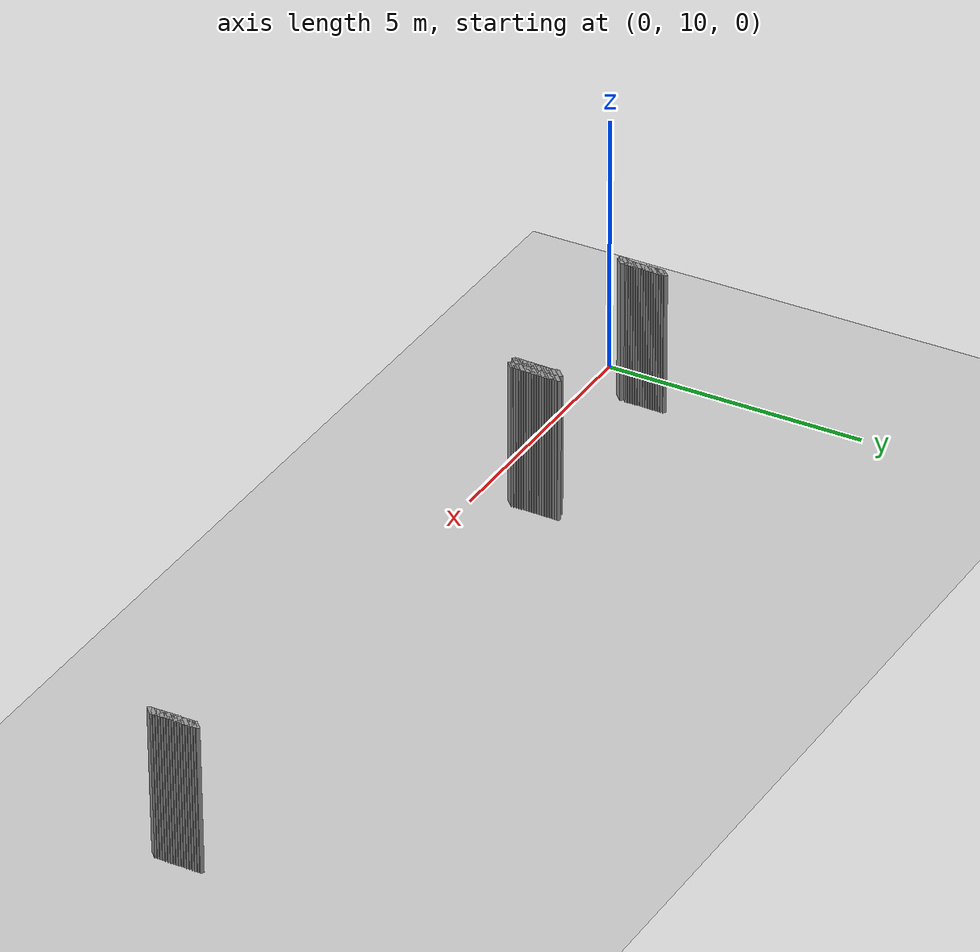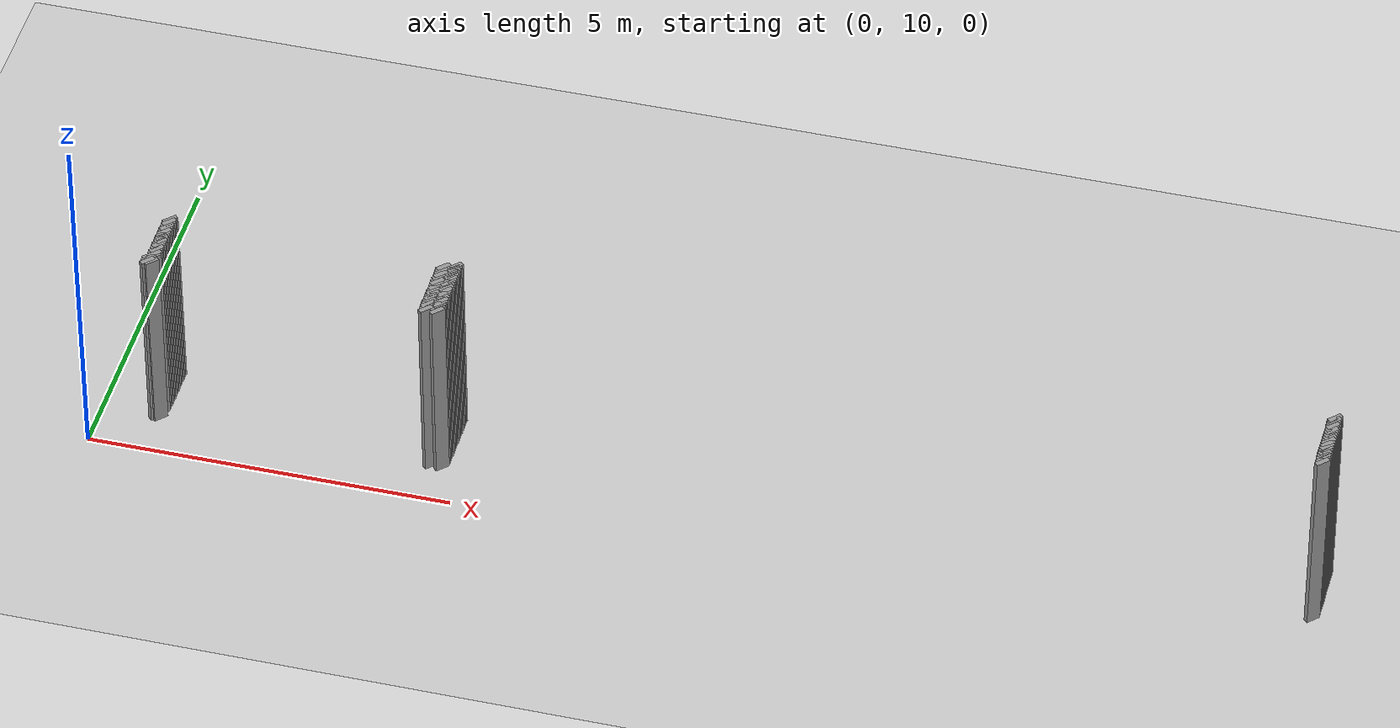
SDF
<sdf version="1.5">
 <world name="default">
  <include><uri>model://ground_plane</uri></include>
  <include><uri>model://sun</uri></include>
  <model name="grey_wall_1404">
   <static>1</static>
   <link name="link">
    <pose>4.7 11.55  1.4 0 0 -0.7853981633974483</pose>
    <collision name="collision">
     <geometry><box><size>0.07071067811865576 .2  2.8</size></box></geometry>
    </collision>
    <visual name="visual">
     <cast_shadows>0</cast_shadows>
     <geometry><box><size>0.07071067811865576 .2  2.8</size></box></geometry>
     <material>
      <script>
       <uri>model://grey_wall/materials/scripts</uri>
       <uri>model://grey_wall/materials/textures</uri>
       <name>vrc/grey_wall</name>
      </script>
     </material>
    </visual>
   </link>
  </model>
  <model name="grey_wall_1405">
   <static>1</static>
   <link name="link">
    <pose>16.45 11.55  1.4 0 0 -0.7853981633974838</pose>
    <collision name="collision">
     <geometry><box><size>0.07071067811865325 .2  2.8</size></box></geometry>
    </collision>
    <visual name="visual">
     <cast_shadows>0</cast_shadows>
     <geometry><box><size>0.07071067811865325 .2  2.8</size></box></geometry>
     <material>
      <script>
       <uri>model://grey_wall/materials/scripts</uri>
       <uri>model://grey_wall/materials/textures</uri>
       <name>vrc/grey_wall</name>
      </script>
     </material>
    </visual>
   </link>
  </model>
  <model name="grey_wall_1406">
   <static>1</static>
   <link name="link">
    <pose>0.8 11.5  1.4 0 0 -0.7853981633974549</pose>
    <collision name="collision">
     <geometry><box><size>0.07071067811865529 .2  2.8</size></box></geometry>
    </collision>
    <visual name="visual">
     <cast_shadows>0</cast_shadows>
     <geometry><box><size>0.07071067811865529 .2  2.8</size></box></geometry>
     <material>
      <script>
       <uri>model://grey_wall/materials/scripts</uri>
       <uri>model://grey_wall/materials/textures</uri>
       <name>vrc/grey_wall</name>
      </script>
     </material>
    </visual>
   </link>
  </model>
  <model name="grey_wall_1407">
   <static>1</static>
   <link name="link">
    <pose>4.55 11.5  1.4 0 0 -0.7853981633974483</pose>
    <collision name="collision">
     <geometry><box><size>0.07071067811865576 .2  2.8</size></box></geometry>
    </collision>
    <visual name="visual">
     <cast_shadows>0</cast_shadows>
     <geometry><box><size>0.07071067811865576 .2  2.8</size></box></geometry>
     <material>
      <script>
       <uri>model://grey_wall/materials/scripts</uri>
       <uri>model://grey_wall/materials/textures</uri>
       <name>vrc/grey_wall</name>
      </script>
     </material>
    </visual>
   </link>
  </model>
  <model name="grey_wall_1408">
   <static>1</static>
   <link name="link">
    <pose>4.7 11.5  1.4 0 0 -0.7853981633974483</pose>
    <collision name="collision">
     <geometry><box><size>0.07071067811865576 .2  2.8</size></box></geometry>
    </collision>
    <visual name="visual">
     <cast_shadows>0</cast_shadows>
     <geometry><box><size>0.07071067811865576 .2  2.8</size></box></geometry>
     <material>
      <script>
       <uri>model://grey_wall/materials/scripts</uri>
       <uri>model://grey_wall/materials/textures</uri>
       <name>vrc/grey_wall</name>
      </script>
     </material>
    </visual>
   </link>
  </model>
  <model name="grey_wall_1409">
   <static>1</static>
   <link name="link">
    <pose>16.45 11.5  1.4 0 0 -0.7853981633974838</pose>
    <collision name="collision">
     <geometry><box><size>0.07071067811865325 .2  2.8</size></box></geometry>
    </collision>
    <visual name="visual">
     <cast_shadows>0</cast_shadows>
     <geometry><box><size>0.07071067811865325 .2  2.8</size></box></geometry>
     <material>
      <script>
       <uri>model://grey_wall/materials/scripts</uri>
       <uri>model://grey_wall/materials/textures</uri>
       <name>vrc/grey_wall</name>
      </script>
     </material>
    </visual>
   </link>
  </model>
  <model name="grey_wall_1410">
   <static>1</static>
   <link name="link">
    <pose>0.8 11.450000000000001  1.4 0 0 -0.7853981633974549</pose>
    <collision name="collision">
     <geometry><box><size>0.07071067811865529 .2  2.8</size></box></geometry>
    </collision>
    <visual name="visual">
     <cast_shadows>0</cast_shadows>
     <geometry><box><size>0.07071067811865529 .2  2.8</size></box></geometry>
     <material>
      <script>
       <uri>model://grey_wall/materials/scripts</uri>
       <uri>model://grey_wall/materials/textures</uri>
       <name>vrc/grey_wall</name>
      </script>
     </material>
    </visual>
   </link>
  </model>
  <model name="grey_wall_1411">
   <static>1</static>
   <link name="link">
    <pose>4.55 11.450000000000001  1.4 0 0 -0.7853981633974483</pose>
    <collision name="collision">
     <geometry><box><size>0.07071067811865576 .2  2.8</size></box></geometry>
    </collision>
    <visual name="visual">
     <cast_shadows>0</cast_shadows>
     <geometry><box><size>0.07071067811865576 .2  2.8</size></box></geometry>
     <material>
      <script>
       <uri>model://grey_wall/materials/scripts</uri>
       <uri>model://grey_wall/materials/textures</uri>
       <name>vrc/grey_wall</name>
      </script>
     </material>
    </visual>
   </link>
  </model>
  <model name="grey_wall_1412">
   <static>1</static>
   <link name="link">
    <pose>4.7 11.450000000000001  1.4 0 0 -0.7853981633974483</pose>
    <collision name="collision">
     <geometry><box><size>0.07071067811865576 .2  2.8</size></box></geometry>
    </collision>
    <visual name="visual">
     <cast_shadows>0</cast_shadows>
     <geometry><box><size>0.07071067811865576 .2  2.8</size></box></geometry>
     <material>
      <script>
       <uri>model://grey_wall/materials/scripts</uri>
       <uri>model://grey_wall/materials/textures</uri>
       <name>vrc/grey_wall</name>
      </script>
     </material>
    </visual>
   </link>
  </model>
  <model name="grey_wall_1413">
   <static>1</static>
   <link name="link">
    <pose>16.45 11.450000000000001  1.4 0 0 -0.7853981633974838</pose>
    <collision name="collision">
     <geometry><box><size>0.07071067811865325 .2  2.8</size></box></geometry>
    </collision>
    <visual name="visual">
     <cast_shadows>0</cast_shadows>
     <geometry><box><size>0.07071067811865325 .2  2.8</size></box></geometry>
     <material>
      <script>
       <uri>model://grey_wall/materials/scripts</uri>
       <uri>model://grey_wall/materials/textures</uri>
       <name>vrc/grey_wall</name>
      </script>
     </material>
    </visual>
   </link>
  </model>
  <model name="grey_wall_1414">
   <static>1</static>
   <link name="link">
    <pose>0.8 11.4  1.4 0 0 -0.7853981633974549</pose>
    <collision name="collision">
     <geometry><box><size>0.07071067811865529 .2  2.8</size></box></geometry>
    </collision>
    <visual name="visual">
     <cast_shadows>0</cast_shadows>
     <geometry><box><size>0.07071067811865529 .2  2.8</size></box></geometry>
     <material>
      <script>
       <uri>model://grey_wall/materials/scripts</uri>
       <uri>model://grey_wall/materials/textures</uri>
       <name>vrc/grey_wall</name>
      </script>
     </material>
    </visual>
   </link>
  </model>
  <model name="grey_wall_1415">
   <static>1</static>
   <link name="link">
    <pose>4.55 11.4  1.4 0 0 -0.7853981633974483</pose>
    <collision name="collision">
     <geometry><box><size>0.07071067811865576 .2  2.8</size></box></geometry>
    </collision>
    <visual name="visual">
     <cast_shadows>0</cast_shadows>
     <geometry><box><size>0.07071067811865576 .2  2.8</size></box></geometry>
     <material>
      <script>
       <uri>model://grey_wall/materials/scripts</uri>
       <uri>model://grey_wall/materials/textures</uri>
       <name>vrc/grey_wall</name>
      </script>
     </material>
    </visual>
   </link>
  </model>
  <model name="grey_wall_1416">
   <static>1</static>
   <link name="link">
    <pose>4.7 11.4  1.4 0 0 -0.7853981633974483</pose>
    <collision name="collision">
     <geometry><box><size>0.07071067811865576 .2  2.8</size></box></geometry>
    </collision>
    <visual name="visual">
     <cast_shadows>0</cast_shadows>
     <geometry><box><size>0.07071067811865576 .2  2.8</size></box></geometry>
     <material>
      <script>
       <uri>model://grey_wall/materials/scripts</uri>
       <uri>model://grey_wall/materials/textures</uri>
       <name>vrc/grey_wall</name>
      </script>
     </material>
    </visual>
   </link>
  </model>
  <model name="grey_wall_1417">
   <static>1</static>
   <link name="link">
    <pose>16.45 11.4  1.4 0 0 -0.7853981633974838</pose>
    <collision name="collision">
     <geometry><box><size>0.07071067811865325 .2  2.8</size></box></geometry>
    </collision>
    <visual name="visual">
     <cast_shadows>0</cast_shadows>
     <geometry><box><size>0.07071067811865325 .2  2.8</size></box></geometry>
     <material>
      <script>
       <uri>model://grey_wall/materials/scripts</uri>
       <uri>model://grey_wall/materials/textures</uri>
       <name>vrc/grey_wall</name>
      </script>
     </material>
    </visual>
   </link>
  </model>
  <model name="grey_wall_1418">
   <static>1</static>
   <link name="link">
    <pose>0.8 11.350000000000001  1.4 0 0 -0.7853981633974549</pose>
    <collision name="collision">
     <geometry><box><size>0.07071067811865529 .2  2.8</size></box></geometry>
    </collision>
    <visual name="visual">
     <cast_shadows>0</cast_shadows>
     <geometry><box><size>0.07071067811865529 .2  2.8</size></box></geometry>
     <material>
      <script>
       <uri>model://grey_wall/materials/scripts</uri>
       <uri>model://grey_wall/materials/textures</uri>
       <name>vrc/grey_wall</name>
      </script>
     </material>
    </visual>
   </link>
  </model>
  <model name="grey_wall_1419">
   <static>1</static>
   <link name="link">
    <pose>4.55 11.350000000000001  1.4 0 0 -0.7853981633974483</pose>
    <collision name="collision">
     <geometry><box><size>0.07071067811865576 .2  2.8</size></box></geometry>
    </collision>
    <visual name="visual">
     <cast_shadows>0</cast_shadows>
     <geometry><box><size>0.07071067811865576 .2  2.8</size></box></geometry>
     <material>
      <script>
       <uri>model://grey_wall/materials/scripts</uri>
       <uri>model://grey_wall/materials/textures</uri>
       <name>vrc/grey_wall</name>
      </script>
     </material>
    </visual>
   </link>
  </model>
  <model name="grey_wall_1420">
   <static>1</static>
   <link name="link">
    <pose>4.7 11.350000000000001  1.4 0 0 -0.7853981633974483</pose>
    <collision name="collision">
     <geometry><box><size>0.07071067811865576 .2  2.8</size></box></geometry>
    </collision>
    <visual name="visual">
     <cast_shadows>0</cast_shadows>
     <geometry><box><size>0.07071067811865576 .2  2.8</size></box></geometry>
     <material>
      <script>
       <uri>model://grey_wall/materials/scripts</uri>
       <uri>model://grey_wall/materials/textures</uri>
       <name>vrc/grey_wall</name>
      </script>
     </material>
    </visual>
   </link>
  </model>
  <model name="grey_wall_1421">
   <static>1</static>
   <link name="link">
    <pose>16.45 11.350000000000001  1.4 0 0 -0.7853981633974838</pose>
    <collision name="collision">
     <geometry><box><size>0.07071067811865325 .2  2.8</size></box></geometry>
    </collision>
    <visual name="visual">
     <cast_shadows>0</cast_shadows>
     <geometry><box><size>0.07071067811865325 .2  2.8</size></box></geometry>
     <material>
      <script>
       <uri>model://grey_wall/materials/scripts</uri>
       <uri>model://grey_wall/materials/textures</uri>
       <name>vrc/grey_wall</name>
      </script>
     </material>
    </visual>
   </link>
  </model>
  <model name="grey_wall_1422">
   <static>1</static>
   <link name="link">
    <pose>0.8 11.3  1.4 0 0 -0.7853981633974549</pose>
    <collision name="collision">
     <geometry><box><size>0.07071067811865529 .2  2.8</size></box></geometry>
    </collision>
    <visual name="visual">
     <cast_shadows>0</cast_shadows>
     <geometry><box><size>0.07071067811865529 .2  2.8</size></box></geometry>
     <material>
      <script>
       <uri>model://grey_wall/materials/scripts</uri>
       <uri>model://grey_wall/materials/textures</uri>
       <name>vrc/grey_wall</name>
      </script>
     </material>
    </visual>
   </link>
  </model>
  <model name="grey_wall_1423">
   <static>1</static>
   <link name="link">
    <pose>4.55 11.3  1.4 0 0 -0.7853981633974483</pose>
    <collision name="collision">
     <geometry><box><size>0.07071067811865576 .2  2.8</size></box></geometry>
    </collision>
    <visual name="visual">
     <cast_shadows>0</cast_shadows>
     <geometry><box><size>0.07071067811865576 .2  2.8</size></box></geometry>
     <material>
      <script>
       <uri>model://grey_wall/materials/scripts</uri>
       <uri>model://grey_wall/materials/textures</uri>
       <name>vrc/grey_wall</name>
      </script>
     </material>
    </visual>
   </link>
  </model>
  <model name="grey_wall_1424">
   <static>1</static>
   <link name="link">
    <pose>4.7 11.3  1.4 0 0 -0.7853981633974483</pose>
    <collision name="collision">
     <geometry><box><size>0.07071067811865576 .2  2.8</size></box></geometry>
    </collision>
    <visual name="visual">
     <cast_shadows>0</cast_shadows>
     <geometry><box><size>0.07071067811865576 .2  2.8</size></box></geometry>
     <material>
      <script>
       <uri>model://grey_wall/materials/scripts</uri>
       <uri>model://grey_wall/materials/textures</uri>
       <name>vrc/grey_wall</name>
      </script>
     </material>
    </visual>
   </link>
  </model>
  <model name="grey_wall_1425">
   <static>1</static>
   <link name="link">
    <pose>16.45 11.3  1.4 0 0 -0.7853981633974838</pose>
    <collision name="collision">
     <geometry><box><size>0.07071067811865325 .2  2.8</size></box></geometry>
    </collision>
    <visual name="visual">
     <cast_shadows>0</cast_shadows>
     <geometry><box><size>0.07071067811865325 .2  2.8</size></box></geometry>
     <material>
      <script>
       <uri>model://grey_wall/materials/scripts</uri>
       <uri>model://grey_wall/materials/textures</uri>
       <name>vrc/grey_wall</name>
      </script>
     </material>
    </visual>
   </link>
  </model>
  <model name="grey_wall_1426">
   <static>1</static>
   <link name="link">
    <pose>0.8 11.25  1.4 0 0 -0.7853981633974549</pose>
    <collision name="collision">
     <geometry><box><size>0.07071067811865529 .2  2.8</size></box></geometry>
    </collision>
    <visual name="visual">
     <cast_shadows>0</cast_shadows>
     <geometry><box><size>0.07071067811865529 .2  2.8</size></box></geometry>
     <material>
      <script>
       <uri>model://grey_wall/materials/scripts</uri>
       <uri>model://grey_wall/materials/textures</uri>
       <name>vrc/grey_wall</name>
      </script>
     </material>
    </visual>
   </link>
  </model>
  <model name="grey_wall_1427">
   <static>1</static>
   <link name="link">
    <pose>4.55 11.25  1.4 0 0 -0.7853981633974483</pose>
    <collision name="collision">
     <geometry><box><size>0.07071067811865576 .2  2.8</size></box></geometry>
    </collision>
    <visual name="visual">
     <cast_shadows>0</cast_shadows>
     <geometry><box><size>0.07071067811865576 .2  2.8</size></box></geometry>
     <material>
      <script>
       <uri>model://grey_wall/materials/scripts</uri>
       <uri>model://grey_wall/materials/textures</uri>
       <name>vrc/grey_wall</name>
      </script>
     </material>
    </visual>
   </link>
  </model>
  <model name="grey_wall_1428">
   <static>1</static>
   <link name="link">
    <pose>4.7 11.25  1.4 0 0 -0.7853981633974483</pose>
    <collision name="collision">
     <geometry><box><size>0.07071067811865576 .2  2.8</size></box></geometry>
    </collision>
    <visual name="visual">
     <cast_shadows>0</cast_shadows>
     <geometry><box><size>0.07071067811865576 .2  2.8</size></box></geometry>
     <material>
      <script>
       <uri>model://grey_wall/materials/scripts</uri>
       <uri>model://grey_wall/materials/textures</uri>
       <name>vrc/grey_wall</name>
      </script>
     </material>
    </visual>
   </link>
  </model>
  <model name="grey_wall_1429">
   <static>1</static>
   <link name="link">
    <pose>16.45 11.25  1.4 0 0 -0.7853981633974838</pose>
    <collision name="collision">
     <geometry><box><size>0.07071067811865325 .2  2.8</size></box></geometry>
    </collision>
    <visual name="visual">
     <cast_shadows>0</cast_shadows>
     <geometry><box><size>0.07071067811865325 .2  2.8</size></box></geometry>
     <material>
      <script>
       <uri>model://grey_wall/materials/scripts</uri>
       <uri>model://grey_wall/materials/textures</uri>
       <name>vrc/grey_wall</name>
      </script>
     </material>
    </visual>
   </link>
  </model>
  <model name="grey_wall_1430">
   <static>1</static>
   <link name="link">
    <pose>0.8 11.200000000000001  1.4 0 0 -0.7853981633974549</pose>
    <collision name="collision">
     <geometry><box><size>0.07071067811865529 .2  2.8</size></box></geometry>
    </collision>
    <visual name="visual">
     <cast_shadows>0</cast_shadows>
     <geometry><box><size>0.07071067811865529 .2  2.8</size></box></geometry>
     <material>
      <script>
       <uri>model://grey_wall/materials/scripts</uri>
       <uri>model://grey_wall/materials/textures</uri>
       <name>vrc/grey_wall</name>
      </script>
     </material>
    </visual>
   </link>
  </model>
  <model name="grey_wall_1431">
   <static>1</static>
   <link name="link">
    <pose>4.55 11.200000000000001  1.4 0 0 -0.7853981633974483</pose>
    <collision name="collision">
     <geometry><box><size>0.07071067811865576 .2  2.8</size></box></geometry>
    </collision>
    <visual name="visual">
     <cast_shadows>0</cast_shadows>
     <geometry><box><size>0.07071067811865576 .2  2.8</size></box></geometry>
     <material>
      <script>
       <uri>model://grey_wall/materials/scripts</uri>
       <uri>model://grey_wall/materials/textures</uri>
       <name>vrc/grey_wall</name>
      </script>
     </material>
    </visual>
   </link>
  </model>
  <model name="grey_wall_1432">
   <static>1</static>
   <link name="link">
    <pose>4.7 11.200000000000001  1.4 0 0 -0.7853981633974483</pose>
    <collision name="collision">
     <geometry><box><size>0.07071067811865576 .2  2.8</size></box></geometry>
    </collision>
    <visual name="visual">
     <cast_shadows>0</cast_shadows>
     <geometry><box><size>0.07071067811865576 .2  2.8</size></box></geometry>
     <material>
      <script>
       <uri>model://grey_wall/materials/scripts</uri>
       <uri>model://grey_wall/materials/textures</uri>
       <name>vrc/grey_wall</name>
      </script>
     </material>
    </visual>
   </link>
  </model>
  <model name="grey_wall_1433">
   <static>1</static>
   <link name="link">
    <pose>16.45 11.200000000000001  1.4 0 0 -0.7853981633974838</pose>
    <collision name="collision">
     <geometry><box><size>0.07071067811865325 .2  2.8</size></box></geometry>
    </collision>
    <visual name="visual">
     <cast_shadows>0</cast_shadows>
     <geometry><box><size>0.07071067811865325 .2  2.8</size></box></geometry>
     <material>
      <script>
       <uri>model://grey_wall/materials/scripts</uri>
       <uri>model://grey_wall/materials/textures</uri>
       <name>vrc/grey_wall</name>
      </script>
     </material>
    </visual>
   </link>
  </model>
  <model name="grey_wall_1434">
   <static>1</static>
   <link name="link">
    <pose>0.8 11.15  1.4 0 0 -0.7853981633974549</pose>
    <collision name="collision">
     <geometry><box><size>0.07071067811865529 .2  2.8</size></box></geometry>
    </collision>
    <visual name="visual">
     <cast_shadows>0</cast_shadows>
     <geometry><box><size>0.07071067811865529 .2  2.8</size></box></geometry>
     <material>
      <script>
       <uri>model://grey_wall/materials/scripts</uri>
       <uri>model://grey_wall/materials/textures</uri>
       <name>vrc/grey_wall</name>
      </script>
     </material>
    </visual>
   </link>
  </model>
  <model name="grey_wall_1435">
   <static>1</static>
   <link name="link">
    <pose>4.55 11.15  1.4 0 0 -0.7853981633974483</pose>
    <collision name="collision">
     <geometry><box><size>0.07071067811865576 .2  2.8</size></box></geometry>
    </collision>
    <visual name="visual">
     <cast_shadows>0</cast_shadows>
     <geometry><box><size>0.07071067811865576 .2  2.8</size></box></geometry>
     <material>
      <script>
       <uri>model://grey_wall/materials/scripts</uri>
       <uri>model://grey_wall/materials/textures</uri>
       <name>vrc/grey_wall</name>
      </script>
     </material>
    </visual>
   </link>
  </model>
  <model name="grey_wall_1436">
   <static>1</static>
   <link name="link">
    <pose>4.7 11.15  1.4 0 0 -0.7853981633974483</pose>
    <collision name="collision">
     <geometry><box><size>0.07071067811865576 .2  2.8</size></box></geometry>
    </collision>
    <visual name="visual">
     <cast_shadows>0</cast_shadows>
     <geometry><box><size>0.07071067811865576 .2  2.8</size></box></geometry>
     <material>
      <script>
       <uri>model://grey_wall/materials/scripts</uri>
       <uri>model://grey_wall/materials/textures</uri>
       <name>vrc/grey_wall</name>
      </script>
     </material>
    </visual>
   </link>
  </model>
  <model name="grey_wall_1437">
   <static>1</static>
   <link name="link">
    <pose>16.45 11.15  1.4 0 0 -0.7853981633974838</pose>
    <collision name="collision">
     <geometry><box><size>0.07071067811865325 .2  2.8</size></box></geometry>
    </collision>
    <visual name="visual">
     <cast_shadows>0</cast_shadows>
     <geometry><box><size>0.07071067811865325 .2  2.8</size></box></geometry>
     <material>
      <script>
       <uri>model://grey_wall/materials/scripts</uri>
       <uri>model://grey_wall/materials/textures</uri>
       <name>vrc/grey_wall</name>
      </script>
     </material>
    </visual>
   </link>
  </model>
  <model name="grey_wall_1438">
   <static>1</static>
   <link name="link">
    <pose>0.8 11.100000000000001  1.4 0 0 -0.7853981633974549</pose>
    <collision name="collision">
     <geometry><box><size>0.07071067811865529 .2  2.8</size></box></geometry>
    </collision>
    <visual name="visual">
     <cast_shadows>0</cast_shadows>
     <geometry><box><size>0.07071067811865529 .2  2.8</size></box></geometry>
     <material>
      <script>
       <uri>model://grey_wall/materials/scripts</uri>
       <uri>model://grey_wall/materials/textures</uri>
       <name>vrc/grey_wall</name>
      </script>
     </material>
    </visual>
   </link>
  </model>
  <model name="grey_wall_1439">
   <static>1</static>
   <link name="link">
    <pose>4.55 11.100000000000001  1.4 0 0 -0.7853981633974483</pose>
    <collision name="collision">
     <geometry><box><size>0.07071067811865576 .2  2.8</size></box></geometry>
    </collision>
    <visual name="visual">
     <cast_shadows>0</cast_shadows>
     <geometry><box><size>0.07071067811865576 .2  2.8</size></box></geometry>
     <material>
      <script>
       <uri>model://grey_wall/materials/scripts</uri>
       <uri>model://grey_wall/materials/textures</uri>
       <name>vrc/grey_wall</name>
      </script>
     </material>
    </visual>
   </link>
  </model>
  <model name="grey_wall_1440">
   <static>1</static>
   <link name="link">
    <pose>4.7 11.100000000000001  1.4 0 0 -0.7853981633974483</pose>
    <collision name="collision">
     <geometry><box><size>0.07071067811865576 .2  2.8</size></box></geometry>
    </collision>
    <visual name="visual">
     <cast_shadows>0</cast_shadows>
     <geometry><box><size>0.07071067811865576 .2  2.8</size></box></geometry>
     <material>
      <script>
       <uri>model://grey_wall/materials/scripts</uri>
       <uri>model://grey_wall/materials/textures</uri>
       <name>vrc/grey_wall</name>
      </script>
     </material>
    </visual>
   </link>
  </model>
  <model name="grey_wall_1441">
   <static>1</static>
   <link name="link">
    <pose>16.45 11.100000000000001  1.4 0 0 -0.7853981633974838</pose>
    <collision name="collision">
     <geometry><box><size>0.07071067811865325 .2  2.8</size></box></geometry>
    </collision>
    <visual name="visual">
     <cast_shadows>0</cast_shadows>
     <geometry><box><size>0.07071067811865325 .2  2.8</size></box></geometry>
     <material>
      <script>
       <uri>model://grey_wall/materials/scripts</uri>
       <uri>model://grey_wall/materials/textures</uri>
       <name>vrc/grey_wall</name>
      </script>
     </material>
    </visual>
   </link>
  </model>
  <model name="grey_wall_1442">
   <static>1</static>
   <link name="link">
    <pose>0.8 11.05  1.4 0 0 -0.7853981633974549</pose>
    <collision name="collision">
     <geometry><box><size>0.07071067811865529 .2  2.8</size></box></geometry>
    </collision>
    <visual name="visual">
     <cast_shadows>0</cast_shadows>
     <geometry><box><size>0.07071067811865529 .2  2.8</size></box></geometry>
     <material>
      <script>
       <uri>model://grey_wall/materials/scripts</uri>
       <uri>model://grey_wall/materials/textures</uri>
       <name>vrc/grey_wall</name>
      </script>
     </material>
    </visual>
   </link>
  </model>
  <model name="grey_wall_1443">
   <static>1</static>
   <link name="link">
    <pose>4.55 11.05  1.4 0 0 -0.7853981633974483</pose>
    <collision name="collision">
     <geometry><box><size>0.07071067811865576 .2  2.8</size></box></geometry>
    </collision>
    <visual name="visual">
     <cast_shadows>0</cast_shadows>
     <geometry><box><size>0.07071067811865576 .2  2.8</size></box></geometry>
     <material>
      <script>
       <uri>model://grey_wall/materials/scripts</uri>
       <uri>model://grey_wall/materials/textures</uri>
       <name>vrc/grey_wall</name>
      </script>
     </material>
    </visual>
   </link>
  </model>
  <model name="grey_wall_1444">
   <static>1</static>
   <link name="link">
    <pose>4.7 11.05  1.4 0 0 -0.7853981633974483</pose>
    <collision name="collision">
     <geometry><box><size>0.07071067811865576 .2  2.8</size></box></geometry>
    </collision>
    <visual name="visual">
     <cast_shadows>0</cast_shadows>
     <geometry><box><size>0.07071067811865576 .2  2.8</size></box></geometry>
     <material>
      <script>
       <uri>model://grey_wall/materials/scripts</uri>
       <uri>model://grey_wall/materials/textures</uri>
       <name>vrc/grey_wall</name>
      </script>
     </material>
    </visual>
   </link>
  </model>
  <model name="grey_wall_1445">
   <static>1</static>
   <link name="link">
    <pose>16.45 11.05  1.4 0 0 -0.7853981633974838</pose>
    <collision name="collision">
     <geometry><box><size>0.07071067811865325 .2  2.8</size></box></geometry>
    </collision>
    <visual name="visual">
     <cast_shadows>0</cast_shadows>
     <geometry><box><size>0.07071067811865325 .2  2.8</size></box></geometry>
     <material>
      <script>
       <uri>model://grey_wall/materials/scripts</uri>
       <uri>model://grey_wall/materials/textures</uri>
       <name>vrc/grey_wall</name>
      </script>
     </material>
    </visual>
   </link>
  </model>
  <model name="grey_wall_1446">
   <static>1</static>
   <link name="link">
    <pose>0.8 11.0  1.4 0 0 -0.7853981633974549</pose>
    <collision name="collision">
     <geometry><box><size>0.07071067811865529 .2  2.8</size></box></geometry>
    </collision>
    <visual name="visual">
     <cast_shadows>0</cast_shadows>
     <geometry><box><size>0.07071067811865529 .2  2.8</size></box></geometry>
     <material>
      <script>
       <uri>model://grey_wall/materials/scripts</uri>
       <uri>model://grey_wall/materials/textures</uri>
       <name>vrc/grey_wall</name>
      </script>
     </material>
    </visual>
   </link>
  </model>
  <model name="grey_wall_1447">
   <static>1</static>
   <link name="link">
    <pose>4.55 11.0  1.4 0 0 -0.7853981633974483</pose>
    <collision name="collision">
     <geometry><box><size>0.07071067811865576 .2  2.8</size></box></geometry>
    </collision>
    <visual name="visual">
     <cast_shadows>0</cast_shadows>
     <geometry><box><size>0.07071067811865576 .2  2.8</size></box></geometry>
     <material>
      <script>
       <uri>model://grey_wall/materials/scripts</uri>
       <uri>model://grey_wall/materials/textures</uri>
       <name>vrc/grey_wall</name>
      </script>
     </material>
    </visual>
   </link>
  </model>
  <model name="grey_wall_1448">
   <static>1</static>
   <link name="link">
    <pose>4.7 11.0  1.4 0 0 -0.7853981633974483</pose>
    <collision name="collision">
     <geometry><box><size>0.07071067811865576 .2  2.8</size></box></geometry>
    </collision>
    <visual name="visual">
     <cast_shadows>0</cast_shadows>
     <geometry><box><size>0.07071067811865576 .2  2.8</size></box></geometry>
     <material>
      <script>
       <uri>model://grey_wall/materials/scripts</uri>
       <uri>model://grey_wall/materials/textures</uri>
       <name>vrc/grey_wall</name>
      </script>
     </material>
    </visual>
   </link>
  </model>
  <model name="grey_wall_1449">
   <static>1</static>
   <link name="link">
    <pose>16.45 11.0  1.4 0 0 -0.7853981633974838</pose>
    <collision name="collision">
     <geometry><box><size>0.07071067811865325 .2  2.8</size></box></geometry>
    </collision>
    <visual name="visual">
     <cast_shadows>0</cast_shadows>
     <geometry><box><size>0.07071067811865325 .2  2.8</size></box></geometry>
     <material>
      <script>
       <uri>model://grey_wall/materials/scripts</uri>
       <uri>model://grey_wall/materials/textures</uri>
       <name>vrc/grey_wall</name>
      </script>
     </material>
    </visual>
   </link>
  </model>
  <model name="grey_wall_1450">
   <static>1</static>
   <link name="link">
    <pose>0.8 10.950000000000001  1.4 0 0 -0.7853981633974549</pose>
    <collision name="collision">
     <geometry><box><size>0.07071067811865529 .2  2.8</size></box></geometry>
    </collision>
    <visual name="visual">
     <cast_shadows>0</cast_shadows>
     <geometry><box><size>0.07071067811865529 .2  2.8</size></box></geometry>
     <material>
      <script>
       <uri>model://grey_wall/materials/scripts</uri>
       <uri>model://grey_wall/materials/textures</uri>
       <name>vrc/grey_wall</name>
      </script>
     </material>
    </visual>
   </link>
  </model>
  <model name="grey_wall_1451">
   <static>1</static>
   <link name="link">
    <pose>4.55 10.950000000000001  1.4 0 0 -0.7853981633974483</pose>
    <collision name="collision">
     <geometry><box><size>0.07071067811865576 .2  2.8</size></box></geometry>
    </collision>
    <visual name="visual">
     <cast_shadows>0</cast_shadows>
     <geometry><box><size>0.07071067811865576 .2  2.8</size></box></geometry>
     <material>
      <script>
       <uri>model://grey_wall/materials/scripts</uri>
       <uri>model://grey_wall/materials/textures</uri>
       <name>vrc/grey_wall</name>
      </script>
     </material>
    </visual>
   </link>
  </model>
  <model name="grey_wall_1452">
   <static>1</static>
   <link name="link">
    <pose>4.7 10.950000000000001  1.4 0 0 -0.7853981633974483</pose>
    <collision name="collision">
     <geometry><box><size>0.07071067811865576 .2  2.8</size></box></geometry>
    </collision>
    <visual name="visual">
     <cast_shadows>0</cast_shadows>
     <geometry><box><size>0.07071067811865576 .2  2.8</size></box></geometry>
     <material>
      <script>
       <uri>model://grey_wall/materials/scripts</uri>
       <uri>model://grey_wall/materials/textures</uri>
       <name>vrc/grey_wall</name>
      </script>
     </material>
    </visual>
   </link>
  </model>
  <model name="grey_wall_1453">
   <static>1</static>
   <link name="link">
    <pose>16.45 10.950000000000001  1.4 0 0 -0.7853981633974838</pose>
    <collision name="collision">
     <geometry><box><size>0.07071067811865325 .2  2.8</size></box></geometry>
    </collision>
    <visual name="visual">
     <cast_shadows>0</cast_shadows>
     <geometry><box><size>0.07071067811865325 .2  2.8</size></box></geometry>
     <material>
      <script>
       <uri>model://grey_wall/materials/scripts</uri>
       <uri>model://grey_wall/materials/textures</uri>
       <name>vrc/grey_wall</name>
      </script>
     </material>
    </visual>
   </link>
  </model>
  <model name="grey_wall_1454">
   <static>1</static>
   <link name="link">
    <pose>0.8 10.9  1.4 0 0 -0.7853981633974549</pose>
    <collision name="collision">
     <geometry><box><size>0.07071067811865529 .2  2.8</size></box></geometry>
    </collision>
    <visual name="visual">
     <cast_shadows>0</cast_shadows>
     <geometry><box><size>0.07071067811865529 .2  2.8</size></box></geometry>
     <material>
      <script>
       <uri>model://grey_wall/materials/scripts</uri>
       <uri>model://grey_wall/materials/textures</uri>
       <name>vrc/grey_wall</name>
      </script>
     </material>
    </visual>
   </link>
  </model>
  <model name="grey_wall_1455">
   <static>1</static>
   <link name="link">
    <pose>4.55 10.9  1.4 0 0 -0.7853981633974483</pose>
    <collision name="collision">
     <geometry><box><size>0.07071067811865576 .2  2.8</size></box></geometry>
    </collision>
    <visual name="visual">
     <cast_shadows>0</cast_shadows>
     <geometry><box><size>0.07071067811865576 .2  2.8</size></box></geometry>
     <material>
      <script>
       <uri>model://grey_wall/materials/scripts</uri>
       <uri>model://grey_wall/materials/textures</uri>
       <name>vrc/grey_wall</name>
      </script>
     </material>
    </visual>
   </link>
  </model>
  <model name="grey_wall_1456">
   <static>1</static>
   <link name="link">
    <pose>4.7 10.9  1.4 0 0 -0.7853981633974483</pose>
    <collision name="collision">
     <geometry><box><size>0.07071067811865576 .2  2.8</size></box></geometry>
    </collision>
    <visual name="visual">
     <cast_shadows>0</cast_shadows>
     <geometry><box><size>0.07071067811865576 .2  2.8</size></box></geometry>
     <material>
      <script>
       <uri>model://grey_wall/materials/scripts</uri>
       <uri>model://grey_wall/materials/textures</uri>
       <name>vrc/grey_wall</name>
      </script>
     </material>
    </visual>
   </link>
  </model>
  <model name="grey_wall_1457">
   <static>1</static>
   <link name="link">
    <pose>16.45 10.9  1.4 0 0 -0.7853981633974838</pose>
    <collision name="collision">
     <geometry><box><size>0.07071067811865325 .2  2.8</size></box></geometry>
    </collision>
    <visual name="visual">
     <cast_shadows>0</cast_shadows>
     <geometry><box><size>0.07071067811865325 .2  2.8</size></box></geometry>
     <material>
      <script>
       <uri>model://grey_wall/materials/scripts</uri>
       <uri>model://grey_wall/materials/textures</uri>
       <name>vrc/grey_wall</name>
      </script>
     </material>
    </visual>
   </link>
  </model>
  <model name="grey_wall_1458">
   <static>1</static>
   <link name="link">
    <pose>0.8 10.850000000000001  1.4 0 0 -0.7853981633974549</pose>
    <collision name="collision">
     <geometry><box><size>0.07071067811865529 .2  2.8</size></box></geometry>
    </collision>
    <visual name="visual">
     <cast_shadows>0</cast_shadows>
     <geometry><box><size>0.07071067811865529 .2  2.8</size></box></geometry>
     <material>
      <script>
       <uri>model://grey_wall/materials/scripts</uri>
       <uri>model://grey_wall/materials/textures</uri>
       <name>vrc/grey_wall</name>
      </script>
     </material>
    </visual>
   </link>
  </model>
  <model name="grey_wall_1459">
   <static>1</static>
   <link name="link">
    <pose>4.55 10.850000000000001  1.4 0 0 -0.7853981633974483</pose>
    <collision name="collision">
     <geometry><box><size>0.07071067811865576 .2  2.8</size></box></geometry>
    </collision>
    <visual name="visual">
     <cast_shadows>0</cast_shadows>
     <geometry><box><size>0.07071067811865576 .2  2.8</size></box></geometry>
     <material>
      <script>
       <uri>model://grey_wall/materials/scripts</uri>
       <uri>model://grey_wall/materials/textures</uri>
       <name>vrc/grey_wall</name>
      </script>
     </material>
    </visual>
   </link>
  </model>
  <model name="grey_wall_1460">
   <static>1</static>
   <link name="link">
    <pose>4.7 10.850000000000001  1.4 0 0 -0.7853981633974483</pose>
    <collision name="collision">
     <geometry><box><size>0.07071067811865576 .2  2.8</size></box></geometry>
    </collision>
    <visual name="visual">
     <cast_shadows>0</cast_shadows>
     <geometry><box><size>0.07071067811865576 .2  2.8</size></box></geometry>
     <material>
      <script>
       <uri>model://grey_wall/materials/scripts</uri>
       <uri>model://grey_wall/materials/textures</uri>
       <name>vrc/grey_wall</name>
      </script>
     </material>
    </visual>
   </link>
  </model>
  <model name="grey_wall_1461">
   <static>1</static>
   <link name="link">
    <pose>16.45 10.850000000000001  1.4 0 0 -0.7853981633974838</pose>
    <collision name="collision">
     <geometry><box><size>0.07071067811865325 .2  2.8</size></box></geometry>
    </collision>
    <visual name="visual">
     <cast_shadows>0</cast_shadows>
     <geometry><box><size>0.07071067811865325 .2  2.8</size></box></geometry>
     <material>
      <script>
       <uri>model://grey_wall/materials/scripts</uri>
       <uri>model://grey_wall/materials/textures</uri>
       <name>vrc/grey_wall</name>
      </script>
     </material>
    </visual>
   </link>
  </model>
  <model name="grey_wall_1462">
   <static>1</static>
   <link name="link">
    <pose>0.8 10.8  1.4 0 0 -0.7853981633974549</pose>
    <collision name="collision">
     <geometry><box><size>0.07071067811865529 .2  2.8</size></box></geometry>
    </collision>
    <visual name="visual">
     <cast_shadows>0</cast_shadows>
     <geometry><box><size>0.07071067811865529 .2  2.8</size></box></geometry>
     <material>
      <script>
       <uri>model://grey_wall/materials/scripts</uri>
       <uri>model://grey_wall/materials/textures</uri>
       <name>vrc/grey_wall</name>
      </script>
     </material>
    </visual>
   </link>
  </model>
  <model name="grey_wall_1463">
   <static>1</static>
   <link name="link">
    <pose>4.55 10.8  1.4 0 0 -0.7853981633974483</pose>
    <collision name="collision">
     <geometry><box><size>0.07071067811865576 .2  2.8</size></box></geometry>
    </collision>
    <visual name="visual">
     <cast_shadows>0</cast_shadows>
     <geometry><box><size>0.07071067811865576 .2  2.8</size></box></geometry>
     <material>
      <script>
       <uri>model://grey_wall/materials/scripts</uri>
       <uri>model://grey_wall/materials/textures</uri>
       <name>vrc/grey_wall</name>
      </script>
     </material>
    </visual>
   </link>
  </model>
  <model name="grey_wall_1464">
   <static>1</static>
   <link name="link">
    <pose>4.7 10.8  1.4 0 0 -0.7853981633974483</pose>
    <collision name="collision">
     <geometry><box><size>0.07071067811865576 .2  2.8</size></box></geometry>
    </collision>
    <visual name="visual">
     <cast_shadows>0</cast_shadows>
     <geometry><box><size>0.07071067811865576 .2  2.8</size></box></geometry>
     <material>
      <script>
       <uri>model://grey_wall/materials/scripts</uri>
       <uri>model://grey_wall/materials/textures</uri>
       <name>vrc/grey_wall</name>
      </script>
     </material>
    </visual>
   </link>
  </model>
  <model name="grey_wall_1465">
   <static>1</static>
   <link name="link">
    <pose>16.45 10.8  1.4 0 0 -0.7853981633974838</pose>
    <collision name="collision">
     <geometry><box><size>0.07071067811865325 .2  2.8</size></box></geometry>
    </collision>
    <visual name="visual">
     <cast_shadows>0</cast_shadows>
     <geometry><box><size>0.07071067811865325 .2  2.8</size></box></geometry>
     <material>
      <script>
       <uri>model://grey_wall/materials/scripts</uri>
       <uri>model://grey_wall/materials/textures</uri>
       <name>vrc/grey_wall</name>
      </script>
     </material>
    </visual>
   </link>
  </model>
  <model name="grey_wall_1466">
   <static>1</static>
   <link name="link">
    <pose>0.75 10.75  1.4 0 0 -0.7853981633974549</pose>
    <collision name="collision">
     <geometry><box><size>0.07071067811865529 .2  2.8</size></box></geometry>
    </collision>
    <visual name="visual">
     <cast_shadows>0</cast_shadows>
     <geometry><box><size>0.07071067811865529 .2  2.8</size></box></geometry>
     <material>
      <script>
       <uri>model://grey_wall/materials/scripts</uri>
       <uri>model://grey_wall/materials/textures</uri>
       <name>vrc/grey_wall</name>
      </script>
     </material>
    </visual>
   </link>
  </model>
  <model name="grey_wall_1467">
   <static>1</static>
   <link name="link">
    <pose>0.8 10.75  1.4 0 0 -0.7853981633974549</pose>
    <collision name="collision">
     <geometry><box><size>0.07071067811865529 .2  2.8</size></box></geometry>
    </collision>
    <visual name="visual">
     <cast_shadows>0</cast_shadows>
     <geometry><box><size>0.07071067811865529 .2  2.8</size></box></geometry>
     <material>
      <script>
       <uri>model://grey_wall/materials/scripts</uri>
       <uri>model://grey_wall/materials/textures</uri>
       <name>vrc/grey_wall</name>
      </script>
     </material>
    </visual>
   </link>
  </model>
  <model name="grey_wall_1468">
   <static>1</static>
   <link name="link">
    <pose>4.55 10.75  1.4 0 0 -0.7853981633974483</pose>
    <collision name="collision">
     <geometry><box><size>0.07071067811865576 .2  2.8</size></box></geometry>
    </collision>
    <visual name="visual">
     <cast_shadows>0</cast_shadows>
     <geometry><box><size>0.07071067811865576 .2  2.8</size></box></geometry>
     <material>
      <script>
       <uri>model://grey_wall/materials/scripts</uri>
       <uri>model://grey_wall/materials/textures</uri>
       <name>vrc/grey_wall</name>
      </script>
     </material>
    </visual>
   </link>
  </model>
  <model name="grey_wall_1469">
   <static>1</static>
   <link name="link">
    <pose>4.7 10.75  1.4 0 0 -0.7853981633974483</pose>
    <collision name="collision">
     <geometry><box><size>0.07071067811865576 .2  2.8</size></box></geometry>
    </collision>
    <visual name="visual">
     <cast_shadows>0</cast_shadows>
     <geometry><box><size>0.07071067811865576 .2  2.8</size></box></geometry>
     <material>
      <script>
       <uri>model://grey_wall/materials/scripts</uri>
       <uri>model://grey_wall/materials/textures</uri>
       <name>vrc/grey_wall</name>
      </script>
     </material>
    </visual>
   </link>
  </model>
  <model name="grey_wall_1470">
   <static>1</static>
   <link name="link">
    <pose>16.45 10.75  1.4 0 0 -0.7853981633974838</pose>
    <collision name="collision">
     <geometry><box><size>0.07071067811865325 .2  2.8</size></box></geometry>
    </collision>
    <visual name="visual">
     <cast_shadows>0</cast_shadows>
     <geometry><box><size>0.07071067811865325 .2  2.8</size></box></geometry>
     <material>
      <script>
       <uri>model://grey_wall/materials/scripts</uri>
       <uri>model://grey_wall/materials/textures</uri>
       <name>vrc/grey_wall</name>
      </script>
     </material>
    </visual>
   </link>
  </model>
  <model name="grey_wall_1471">
   <static>1</static>
   <link name="link">
    <pose>0.75 10.700000000000001  1.4 0 0 -0.7853981633974549</pose>
    <collision name="collision">
     <geometry><box><size>0.07071067811865529 .2  2.8</size></box></geometry>
    </collision>
    <visual name="visual">
     <cast_shadows>0</cast_shadows>
     <geometry><box><size>0.07071067811865529 .2  2.8</size></box></geometry>
     <material>
      <script>
       <uri>model://grey_wall/materials/scripts</uri>
       <uri>model://grey_wall/materials/textures</uri>
       <name>vrc/grey_wall</name>
      </script>
     </material>
    </visual>
   </link>
  </model>
  <model name="grey_wall_1472">
   <static>1</static>
   <link name="link">
    <pose>4.55 10.700000000000001  1.4 0 0 -0.7853981633974483</pose>
    <collision name="collision">
     <geometry><box><size>0.07071067811865576 .2  2.8</size></box></geometry>
    </collision>
    <visual name="visual">
     <cast_shadows>0</cast_shadows>
     <geometry><box><size>0.07071067811865576 .2  2.8</size></box></geometry>
     <material>
      <script>
       <uri>model://grey_wall/materials/scripts</uri>
       <uri>model://grey_wall/materials/textures</uri>
       <name>vrc/grey_wall</name>
      </script>
     </material>
    </visual>
   </link>
  </model>
  <model name="grey_wall_1473">
   <static>1</static>
   <link name="link">
    <pose>4.7 10.700000000000001  1.4 0 0 -0.7853981633974483</pose>
    <collision name="collision">
     <geometry><box><size>0.07071067811865576 .2  2.8</size></box></geometry>
    </collision>
    <visual name="visual">
     <cast_shadows>0</cast_shadows>
     <geometry><box><size>0.07071067811865576 .2  2.8</size></box></geometry>
     <material>
      <script>
       <uri>model://grey_wall/materials/scripts</uri>
       <uri>model://grey_wall/materials/textures</uri>
       <name>vrc/grey_wall</name>
      </script>
     </material>
    </visual>
   </link>
  </model>
  <model name="grey_wall_1474">
   <static>1</static>
   <link name="link">
    <pose>16.45 10.700000000000001  1.4 0 0 -0.7853981633974838</pose>
    <collision name="collision">
     <geometry><box><size>0.07071067811865325 .2  2.8</size></box></geometry>
    </collision>
    <visual name="visual">
     <cast_shadows>0</cast_shadows>
     <geometry><box><size>0.07071067811865325 .2  2.8</size></box></geometry>
     <material>
      <script>
       <uri>model://grey_wall/materials/scripts</uri>
       <uri>model://grey_wall/materials/textures</uri>
       <name>vrc/grey_wall</name>
      </script>
     </material>
    </visual>
   </link>
  </model>
  <model name="grey_wall_1475">
   <static>1</static>
   <link name="link">
    <pose>0.75 10.65  1.4 0 0 -0.7853981633974549</pose>
    <collision name="collision">
     <geometry><box><size>0.07071067811865529 .2  2.8</size></box></geometry>
    </collision>
    <visual name="visual">
     <cast_shadows>0</cast_shadows>
     <geometry><box><size>0.07071067811865529 .2  2.8</size></box></geometry>
     <material>
      <script>
       <uri>model://grey_wall/materials/scripts</uri>
       <uri>model://grey_wall/materials/textures</uri>
       <name>vrc/grey_wall</name>
      </script>
     </material>
    </visual>
   </link>
  </model>
  <model name="grey_wall_1476">
   <static>1</static>
   <link name="link">
    <pose>0.8 10.65  1.4 0 0 -0.7853981633974549</pose>
    <collision name="collision">
     <geometry><box><size>0.07071067811865529 .2  2.8</size></box></geometry>
    </collision>
    <visual name="visual">
     <cast_shadows>0</cast_shadows>
     <geometry><box><size>0.07071067811865529 .2  2.8</size></box></geometry>
     <material>
      <script>
       <uri>model://grey_wall/materials/scripts</uri>
       <uri>model://grey_wall/materials/textures</uri>
       <name>vrc/grey_wall</name>
      </script>
     </material>
    </visual>
   </link>
  </model>
  <model name="grey_wall_1477">
   <static>1</static>
   <link name="link">
    <pose>4.55 10.65  1.4 0 0 -0.7853981633974483</pose>
    <collision name="collision">
     <geometry><box><size>0.07071067811865576 .2  2.8</size></box></geometry>
    </collision>
    <visual name="visual">
     <cast_shadows>0</cast_shadows>
     <geometry><box><size>0.07071067811865576 .2  2.8</size></box></geometry>
     <material>
      <script>
       <uri>model://grey_wall/materials/scripts</uri>
       <uri>model://grey_wall/materials/textures</uri>
       <name>vrc/grey_wall</name>
      </script>
     </material>
    </visual>
   </link>
  </model>
  <model name="grey_wall_1478">
   <static>1</static>
   <link name="link">
    <pose>4.7 10.65  1.4 0 0 -0.7853981633974483</pose>
    <collision name="collision">
     <geometry><box><size>0.07071067811865576 .2  2.8</size></box></geometry>
    </collision>
    <visual name="visual">
     <cast_shadows>0</cast_shadows>
     <geometry><box><size>0.07071067811865576 .2  2.8</size></box></geometry>
     <material>
      <script>
       <uri>model://grey_wall/materials/scripts</uri>
       <uri>model://grey_wall/materials/textures</uri>
       <name>vrc/grey_wall</name>
      </script>
     </material>
    </visual>
   </link>
  </model>
 </world>
</sdf>
